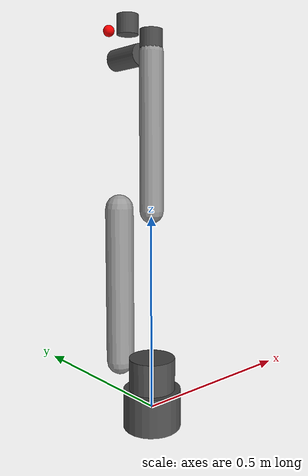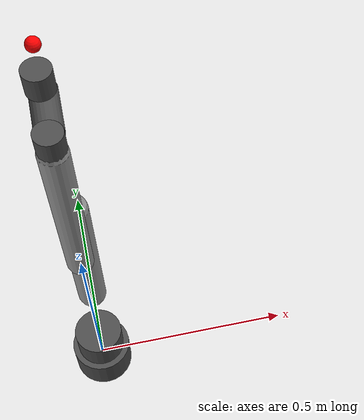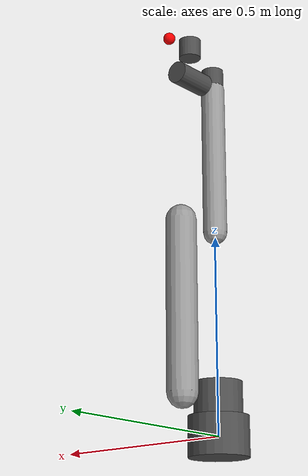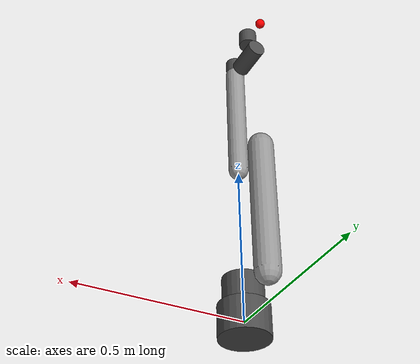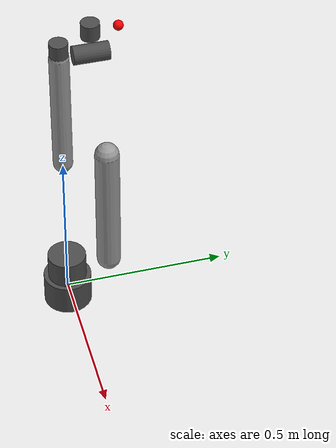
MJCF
<?xml version="1.0" encoding="utf-8"?>
<mujoco model="ur5">

  <compiler angle="radian" meshdir="." autolimits="true"/>

  <option timestep="0.002" gravity="0 0 -9.81" integrator="RK4"/>

  <default>
    <joint damping="0.5" armature="0.01" frictionloss="0.1"/>
    <geom contype="1" conaffinity="1" condim="4" friction="1 0.005 0.0001" rgba="0.4 0.6 0.8 1"/>
    <motor ctrllimited="true" ctrlrange="-150 150"/>
  </default>

  <worldbody>
    <!-- Base -->
    <body name="base" pos="0 0 0">
      <geom type="cylinder" size="0.075 0.05" rgba="0.3 0.3 0.3 1"/>
      <inertial pos="0 0 0" mass="4.0" diaginertia="0.00443 0.00443 0.0072"/>

      <!-- Joint 1: shoulder_pan — rotates around Z axis -->
      <body name="shoulder" pos="0 0 0.089">
        <joint name="shoulder_pan_joint" type="hinge" axis="0 0 1"
               range="-3.14159 3.14159" pos="0 0 0"/>
        <geom type="cylinder" size="0.06 0.044" rgba="0.3 0.3 0.3 1"/>
        <inertial pos="0 0 0" mass="3.7" diaginertia="0.0102 0.0102 0.00666"/>

        <!-- Joint 2: shoulder_lift — rotates around Y axis -->
        <body name="upper_arm" pos="0 0.135 0">
          <joint name="shoulder_lift_joint" type="hinge" axis="0 1 0"
                 range="-3.14159 3.14159" pos="0 0 0"/>
          <geom type="capsule" fromto="0 0 0 0 0 0.425" size="0.038" rgba="0.6 0.6 0.6 1"/>
          <inertial pos="0 0 0.2125" mass="8.393" diaginertia="0.226 0.226 0.0151"/>

          <!-- Joint 3: elbow — rotates around Y axis -->
          <body name="forearm" pos="0 -0.135 0.425">
            <joint name="elbow_joint" type="hinge" axis="0 1 0"
                   range="-3.14159 3.14159" pos="0 0 0"/>
            <geom type="capsule" fromto="0 0 0 0 0 0.392" size="0.03" rgba="0.6 0.6 0.6 1"/>
            <inertial pos="0 0 0.196" mass="2.275" diaginertia="0.0494 0.0494 0.00281"/>

            <!-- Joint 4: wrist1 — rotates around Y axis -->
            <body name="wrist1" pos="0 0 0.392">
              <joint name="wrist_1_joint" type="hinge" axis="0 1 0"
                     range="-3.14159 3.14159" pos="0 0 0"/>
              <geom type="cylinder" size="0.028 0.0535" rgba="0.3 0.3 0.3 1"/>
              <inertial pos="0 0 0" mass="1.219" diaginertia="0.00111 0.00111 0.00111"/>

              <!-- Joint 5: wrist2 — rotates around Z axis -->
              <body name="wrist2" pos="0 0.093 0">
                <joint name="wrist_2_joint" type="hinge" axis="0 0 1"
                       range="-3.14159 3.14159" pos="0 0 0"/>
                <geom type="cylinder" size="0.028 0.0535" pos="0 0 0" euler="1.5708 0 0"
                      rgba="0.3 0.3 0.3 1"/>
                <inertial pos="0 0 0" mass="1.219" diaginertia="0.00111 0.00111 0.00111"/>

                <!-- Joint 6: wrist3 — rotates around Y axis -->
                <body name="wrist3" pos="0 0 0.082">
                  <joint name="wrist_3_joint" type="hinge" axis="0 1 0"
                         range="-3.14159 3.14159" pos="0 0 0"/>
                  <geom type="cylinder" size="0.028 0.025" rgba="0.3 0.3 0.3 1"/>
                  <inertial pos="0 0 0" mass="0.1879" diaginertia="0.000132 0.000132 0.000132"/>

                  <!-- End-effector site -->
                  <body name="ee_body" pos="0 0.082 0">
                    <site name="end_effector" pos="0 0 0" size="0.015"
                          rgba="1 0 0 1" type="sphere"/>
                    <geom type="sphere" size="0.015" rgba="1 0 0 0.8"/>
                  </body>

                </body>  <!-- wrist3 -->
              </body>    <!-- wrist2 -->
            </body>      <!-- wrist1 -->
          </body>        <!-- forearm -->
        </body>          <!-- upper_arm -->
      </body>            <!-- shoulder -->
    </body>              <!-- base -->
  </worldbody>

  <!-- Torque actuators, one per joint, max 150 Nm -->
  <actuator>
    <motor name="shoulder_pan"  joint="shoulder_pan_joint"  gear="1" ctrlrange="-150 150"/>
    <motor name="shoulder_lift" joint="shoulder_lift_joint" gear="1" ctrlrange="-150 150"/>
    <motor name="elbow"         joint="elbow_joint"         gear="1" ctrlrange="-100 100"/>
    <motor name="wrist_1"       joint="wrist_1_joint"       gear="1" ctrlrange="-28 28"/>
    <motor name="wrist_2"       joint="wrist_2_joint"       gear="1" ctrlrange="-28 28"/>
    <motor name="wrist_3"       joint="wrist_3_joint"       gear="1" ctrlrange="-28 28"/>
  </actuator>

</mujoco>
